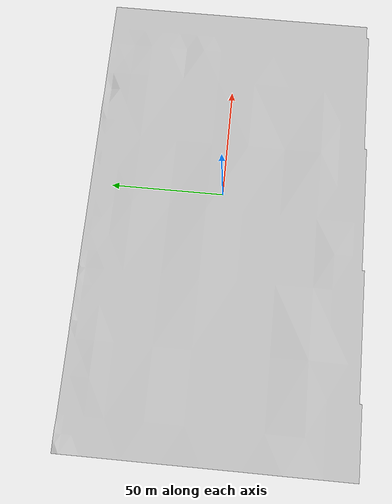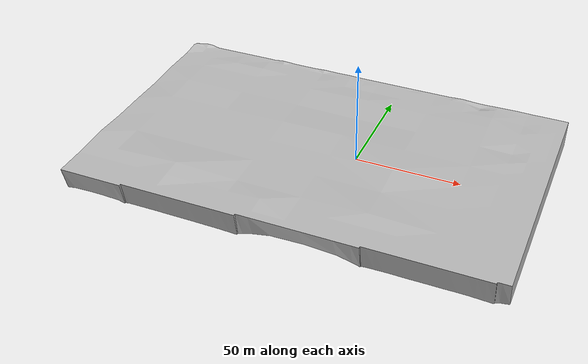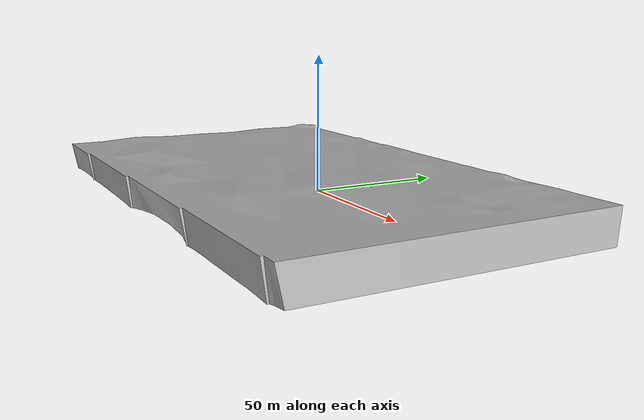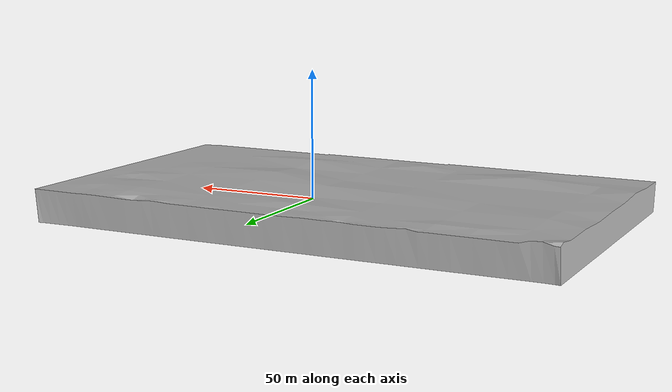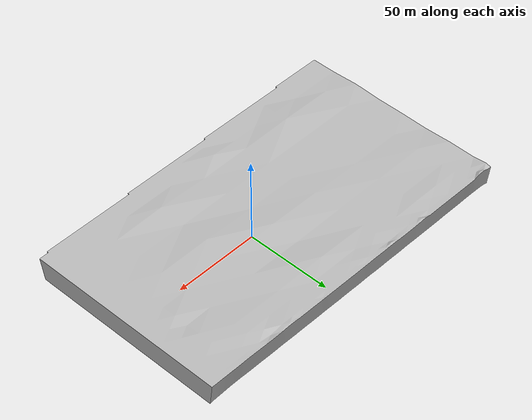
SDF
<sdf version="1.7">
  <model name="my_terrain">
    <!-- Статический объект (не двигается) -->
    <static>true</static>

    <!-- Ссылка на основную геометрию -->
    <link name="base_link">
      <!-- Визуальная часть (рендеринг) -->
      <visual name="visual">
        <geometry>
          <!-- Загрузка .stl -->
          <mesh>
            <uri>file://home/developer/robocross.dune/ros2_ws/src/main/worlds/1234/map.obj</uri>
            <scale>0.83 0.83 0.83</scale>  <!-- Масштаб (если нужно) -->
          </mesh>
        </geometry>

        <!-- Материал (если есть .tif-текстура) -->
      </visual>

      <!-- Коллизии (физика) -->
      <collision name="collision">
        <geometry>
          <mesh>
            <uri>file://home/developer/robocross.dune/ros2_ws/src/main/worlds/1234/map.obj</uri>
            <scale>0.83 0.83 0.83</scale>
          </mesh>
        </geometry>
         <surface>
        <friction>
          <ode>
            <mu>100.0</mu>
            <mu2>100.0</mu2>
          </ode>
        </friction>
      </surface>
      </collision>
    </link>
  </model>
</sdf>
